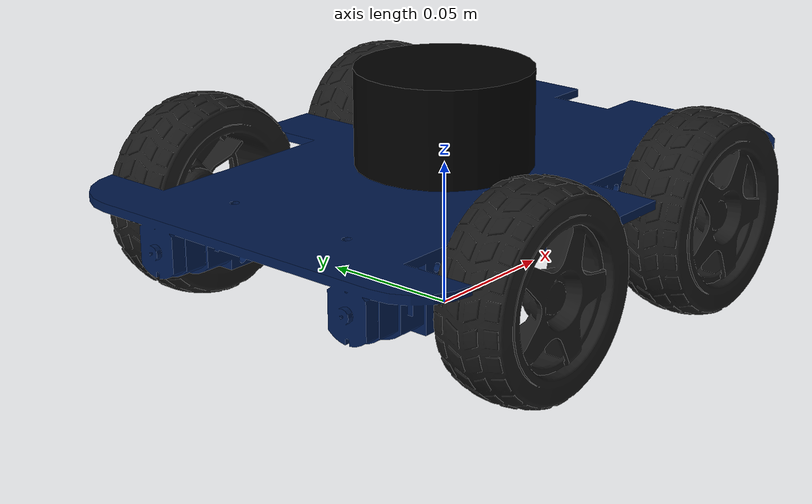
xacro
<?xml version="1.0" encoding="utf-8"?>
<robot xmlns:xacro="http://www.ros.org/wiki/xacro" name="my_robot">

  <!-- Package path property for both RViz and Gazebo -->
  <xacro:property name="mesh_path" value="package://my_robot/meshes" />

  <!-- BASE LINK                       -->
  <link name="base_link">
    <visual>
      <origin xyz="0 0 0" rpy="0 0 0" />
      <geometry>
        <mesh filename="${mesh_path}/base_link.STL" />
      </geometry>
      <material name="dark_blue">
        <color rgba="0.0 0.1 0.3 1" />
      </material>
    </visual>
    <collision>
      <origin xyz="0 0 0" rpy="0 0 0" />
      <geometry>
        <mesh filename="${mesh_path}/base_link.STL" />
      </geometry>
    </collision>
    <inertial>
      <origin xyz="-0.0077 0.0 -0.008" rpy="0 0 0" />
      <mass value="2.0" />
      <inertia ixx="0.01" ixy="0" ixz="0" iyy="0.02" iyz="0" izz="0.02" />
    </inertial>
  </link>

  <!-- Dummy root link for Gazebo base -->
  <link name="base_footprint" />
  <joint name="base_footprint_joint" type="fixed">
    <parent link="base_footprint" />
    <child link="base_link" />
    <origin xyz="0 0 0.05" rpy="0 0 0" />
  </joint>

  <!-- WHEEL LINKS AND JOINTS          -->

  <!-- RR Wheel -->
  <link name="RR_link">
    <visual>
      <origin xyz="0 0 0" rpy="0 0 0" />
      <geometry>
        <mesh filename="${mesh_path}/RR_link.STL" />
      </geometry>
      <material name="black"><color rgba="0.1 0.1 0.1 1" /></material>
    </visual>
    <collision>
      <origin xyz="0 0 0" rpy="0 0 0" />
      <geometry>
        <mesh filename="${mesh_path}/RR_link.STL" />
      </geometry>
    </collision>
    <inertial>
      <origin xyz="-1.1878E-08 0.00737 3.0267E-08" rpy="0 0 0" />
      <mass value="0.021404" />
      <inertia ixx="8.628E-06" ixy="2.718E-12" ixz="3.53E-10" iyy="1.4515E-05" iyz="-9.519E-12" izz="8.6269E-06" />
    </inertial>
  </link>
  <joint name="RR_joint" type="continuous">
    <origin xyz="-0.043728 -0.078059 -0.0142" rpy="0 0 0" />
    <parent link="base_link" />
    <child link="RR_link" />
    <axis xyz="0 1 0" />
  </joint>

  <!-- RL Wheel -->
  <link name="RL-link">
    <visual>
      <origin xyz="0 0 0" rpy="0 0 0" />
      <geometry>
        <mesh filename="${mesh_path}/RL-link.STL" />
      </geometry>
      <material name="black"><color rgba="0.1 0.1 0.1 1" /></material>
    </visual>
    <collision>
      <origin xyz="0 0 0" rpy="0 0 0" />
      <geometry>
        <mesh filename="${mesh_path}/RL-link.STL" />
      </geometry>
    </collision>
    <inertial>
      <origin xyz="-2.595E-08 -0.00737 1.972E-08" rpy="0 0 0" />
      <mass value="0.021404" />
      <inertia ixx="8.627E-06" ixy="-8.234E-12" ixz="6.533E-10" iyy="1.4515E-05" iyz="5.501E-12" izz="8.6279E-06" />
    </inertial>
  </link>
  <joint name="RL_joint" type="continuous">
    <origin xyz="-0.043318 0.07778 -0.0142" rpy="0 0 0" />
    <parent link="base_link" />
    <child link="RL-link" />
    <axis xyz="0 1 0" />
  </joint>

  <!-- FR Wheel -->
  <link name="FR_link">
    <visual>
      <origin xyz="0 0 0" rpy="0 0 0" />
      <geometry>
        <mesh filename="${mesh_path}/FR_link.STL" />
      </geometry>
      <material name="black"><color rgba="0.1 0.1 0.1 1" /></material>
    </visual>
    <collision>
      <origin xyz="0 0 0" rpy="0 0 0" />
      <geometry>
        <mesh filename="${mesh_path}/FR_link.STL" />
      </geometry>
    </collision>
    <inertial>
      <origin xyz="-3.373E-08 0.00737 3.366E-09" rpy="0 0 0" />
      <mass value="0.021404" />
      <inertia ixx="8.6269E-06" ixy="9.834E-12" ixz="2.2159E-10" iyy="1.4515E-05" iyz="-1.375E-12" izz="8.628E-06" />
    </inertial>
  </link>
  <joint name="FR_joint" type="continuous">
    <origin xyz="0.047388 -0.077442 -0.0142" rpy="0 0 0" />
    <parent link="base_link" />
    <child link="FR_link" />
    <axis xyz="0 1 0" />
  </joint>

  <!-- FL Wheel -->
  <link name="FL_link">
    <visual>
      <origin xyz="0 0 0" rpy="0 0 0" />
      <geometry>
        <mesh filename="${mesh_path}/FL_link.STL" />
      </geometry>
      <material name="black"><color rgba="0.1 0.1 0.1 1" /></material>
    </visual>
    <collision>
      <origin xyz="0 0 0" rpy="0 0 0" />
      <geometry>
        <mesh filename="${mesh_path}/FL_link.STL" />
      </geometry>
    </collision>
    <inertial>
      <origin xyz="-1.9405E-08 -0.00737 -2.553E-08" rpy="0 0 0" />
      <mass value="0.021404" />
      <inertia ixx="8.627E-06" ixy="-5.194E-12" ixz="-6.282E-10" iyy="1.4515E-05" iyz="-8.417E-12" izz="8.627E-06" />
    </inertial>
  </link>
  <joint name="FL_joint" type="continuous">
    <origin xyz="0.048214 0.076794 -0.0142" rpy="0 0 0" />
    <parent link="base_link" />
    <child link="FL_link" />
    <axis xyz="0 1 0" />
  </joint>

  <!-- LiDAR SENSOR                    -->
  <link name="lidar_link">
    <visual>
      <origin xyz="0 0 0" rpy="0 0 0" />
      <geometry>
        <cylinder radius="0.03" length="0.04" />
      </geometry>
      <material name="black">
        <color rgba="0 0 0 1" />
      </material>
    </visual>
    <collision>
      <origin xyz="0 0 0" rpy="0 0 0" />
      <geometry>
        <cylinder radius="0.02" length="0.03" />
      </geometry>
    </collision>
    <inertial>
      <mass value="0.1" />
      <origin xyz="0 0 0" rpy="0 0 0" />
      <inertia ixx="0.0001" ixy="0" ixz="0" iyy="0.0001" iyz="0" izz="0.0001" />
    </inertial>
  </link>
  <joint name="lidar_joint" type="fixed">
    <parent link="base_link" />
    <child link="lidar_link" />
    <origin xyz="0.0 0.0 0.013" rpy="0 0 0" />
  </joint>

  <!-- GAZEBO PLUGINS & PROPERTIES     -->

  <!-- Material references for Gazebo -->
  <gazebo reference="base_link"><visual><material><ambient>0.0 0.1 0.3 1</ambient><diffuse>0.0 0.1 0.3 1</diffuse></material></visual></gazebo>
  <gazebo reference="RR_link"><visual><material><ambient>0.1 0.1 0.1 1</ambient><diffuse>0.1 0.1 0.1 1</diffuse></material></visual></gazebo>
  <gazebo reference="RL-link"><visual><material><ambient>0.1 0.1 0.1 1</ambient><diffuse>0.1 0.1 0.1 1</diffuse></material></visual></gazebo>
  <gazebo reference="FR_link"><visual><material><ambient>0.1 0.1 0.1 1</ambient><diffuse>0.1 0.1 0.1 1</diffuse></material></visual></gazebo>
  <gazebo reference="FL_link"><visual><material><ambient>0.1 0.1 0.1 1</ambient><diffuse>0.1 0.1 0.1 1</diffuse></material></visual></gazebo>

  <!-- Wheel friction properties -->
  <gazebo reference="FL_link"><mu1>1.0</mu1><mu2>1.0</mu2></gazebo>
  <gazebo reference="FR_link"><mu1>1.0</mu1><mu2>1.0</mu2></gazebo>
  <gazebo reference="RL-link"><mu1>1.0</mu1><mu2>1.0</mu2></gazebo>
  <gazebo reference="RR_link"><mu1>1.0</mu1><mu2>1.0</mu2></gazebo>

  <gazebo>
    <plugin filename="gz-sim-diff-drive-system" name="gz::sim::systems::DiffDrive">
      <left_joint>FL_joint</left_joint>
      <left_joint>RL_joint</left_joint>
      <right_joint>FR_joint</right_joint>
      <right_joint>RR_joint</right_joint>
      <wheel_separation>0.155</wheel_separation>
      <wheel_radius>0.03</wheel_radius>
      <odom_publish_frequency>50</odom_publish_frequency>
      <topic>/cmd_vel</topic>
      <odom_topic>/odom</odom_topic>
      <tf_topic>/tf</tf_topic>
      <frame_id>odom</frame_id>
      <child_frame_id>base_footprint</child_frame_id>
    </plugin>
  </gazebo>

  <!-- Joint State Publisher for TF tree completeness -->
  <gazebo>
    <plugin filename="gz-sim-joint-state-publisher-system" name="gz::sim::systems::JointStatePublisher">
      <joint_name>FL_joint</joint_name>
      <joint_name>FR_joint</joint_name>
      <joint_name>RL_joint</joint_name>
      <joint_name>RR_joint</joint_name>
      <topic>/joint_states</topic>
    </plugin>
  </gazebo>

  <!-- LiDAR Ray Sensor -->
  <gazebo reference="lidar_link">
    <sensor name="lidar_sensor" type="gpu_lidar">
      <pose>0 0 0 0 0 0</pose>
      <topic>/scan</topic>
      <gz_frame_id>lidar_link</gz_frame_id>
      <update_rate>10.0</update_rate>
      <lidar>
        <scan>
          <horizontal>
            <samples>360</samples>
            <resolution>1</resolution>
            <min_angle>-3.14159</min_angle>
            <max_angle>3.14159</max_angle>
          </horizontal>
        </scan>
        <range>
          <min>0.12</min>
          <max>10.0</max>
        </range>
      </lidar>
      <always_on>1</always_on>
      <visualize>true</visualize>
    </sensor>
  </gazebo>

</robot>
